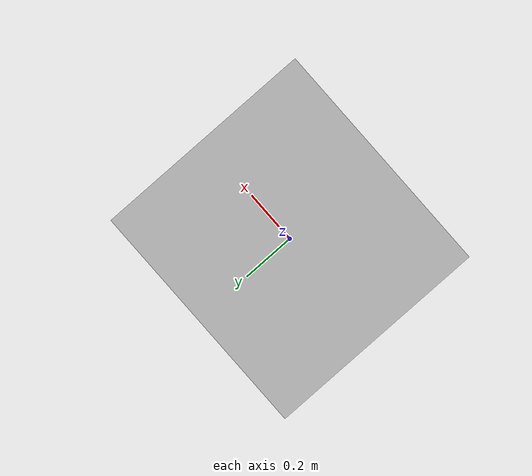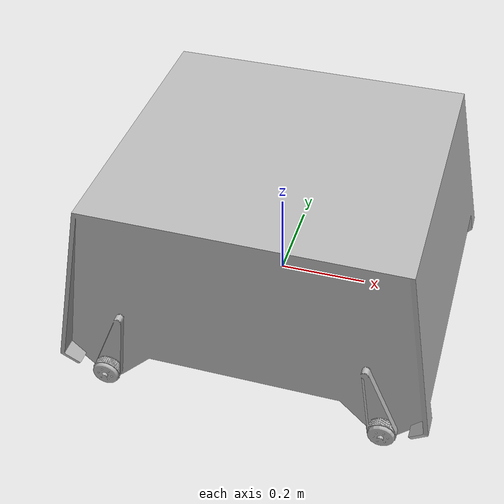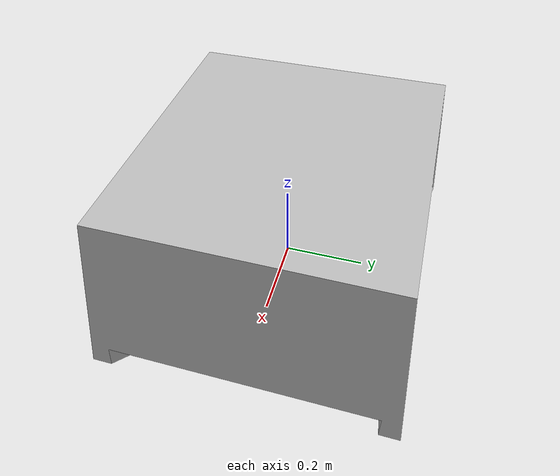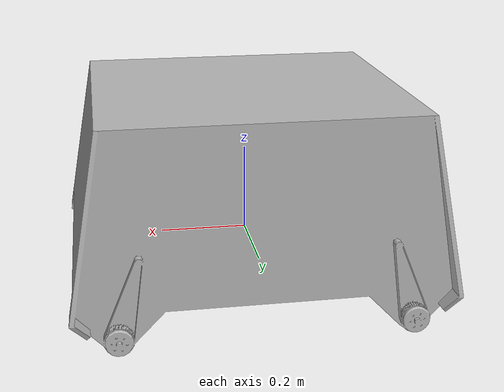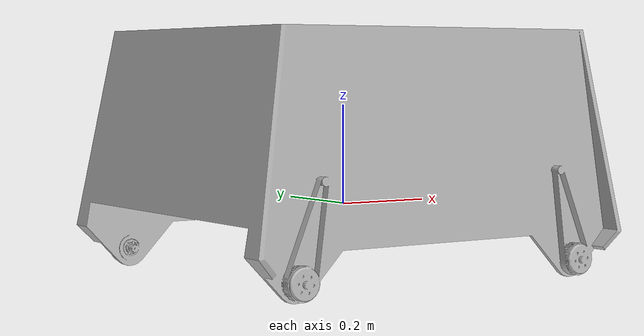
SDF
<?xml version="1.0" ?>
<sdf version="1.5">
  <model name="body">
    <!-- Give the base link a unique name -->
    <pose>0 0 0 0 0 0</pose>
    <link name="base">
      <inertial>
        <mass>60.0</mass>
          <inertia>
              <ixx>18.889</ixx>
              <iyy>15.40</iyy>
              <izz>24.8</izz>
              <ixy>12.28</ixy>
              <ixz>7.11</ixz>
              <iyz>8.19</iyz>
          </inertia>
      </inertial>

      <visual name="base_visual">
        <geometry>
          <mesh>
            <uri>model://robot_simulation/models/robot_body/meshes/robot_body.obj</uri>
          </mesh>
        </geometry>
      </visual>

      <collision name="base_collision">
        <geometry>
          <mesh>
            <uri>model://robot_simulation/models/robot_body/meshes/robot_body.obj</uri>
          </mesh>
        </geometry>
      </collision>
    </link>

  </model>
</sdf>
